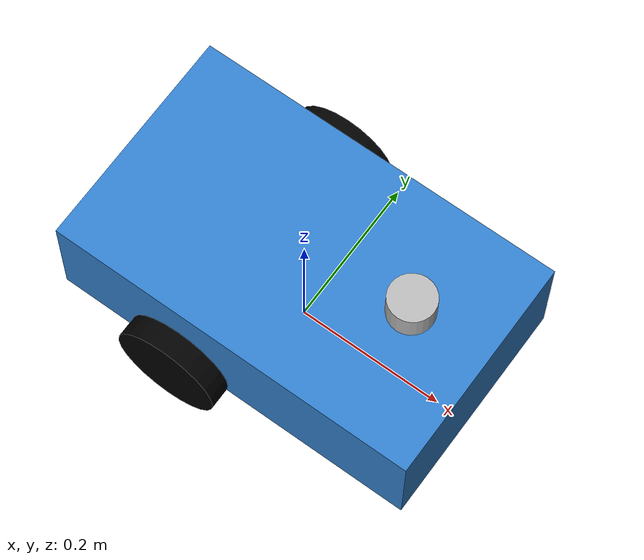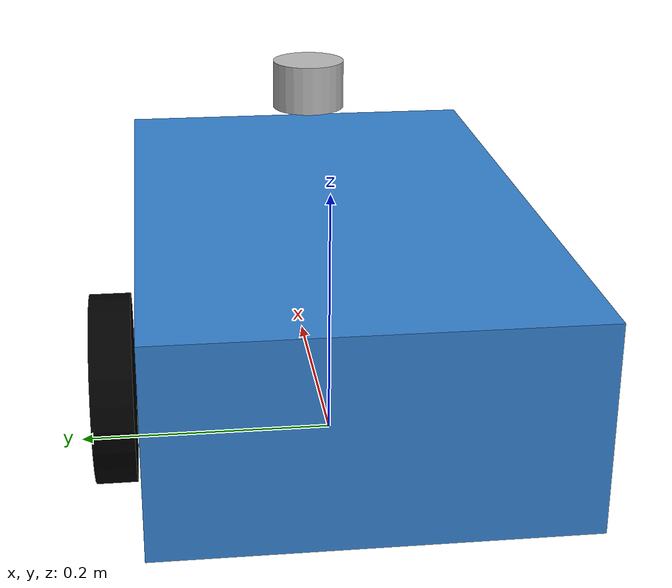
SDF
<?xml version="1.0"?>
<sdf version="1.6">
  <model name="two_wheel_robot">
    <static>false</static>

    <!-- Base Link -->
    <link name="base_link">
      <pose>0 0 0.12 0 0 0</pose>

      <inertial>
        <mass>5.0</mass>
        <inertia>
          <ixx>0.1</ixx><iyy>0.1</iyy><izz>0.1</izz>
          <ixy>0</ixy><ixz>0</ixz><iyz>0</iyz>
        </inertia>
      </inertial>

      <!-- Body -->
      <visual name="base_visual">
        <geometry>
          <box><size>0.5 0.3 0.15</size></box>
        </geometry>
        <material><ambient>0.2 0.5 0.8 1</ambient></material>
      </visual>

      <collision name="base_collision">
        <geometry>
          <box><size>0.5 0.3 0.15</size></box>
        </geometry>
      </collision>
    </link>

    <!-- Left Wheel -->
    <link name="left_wheel">
      <pose>-0.07 0.17 0.08 1.5708 0 0</pose>

      <inertial>
        <mass>0.5</mass>
        <inertia><ixx>0.01</ixx><iyy>0.01</iyy><izz>0.01</izz></inertia>
      </inertial>
      <visual name="left_wheel_visual">
        <geometry>
          <cylinder><radius>0.07</radius><length>0.03</length></cylinder>
        </geometry>
        <material><ambient>0 0 0 1</ambient></material>
      </visual>
      <collision name="left_wheel_collision">
        <geometry>
          <cylinder><radius>0.07</radius><length>0.03</length></cylinder>
        </geometry>
      </collision>
    </link>

    <!-- Right Wheel -->
    <link name="right_wheel">
      <pose>-0.07 -0.17 0.08 1.5708 0 0</pose>

      <inertial>
        <mass>0.5</mass>
        <inertia><ixx>0.01</ixx><iyy>0.01</iyy><izz>0.01</izz></inertia>
      </inertial>
      <visual name="right_wheel_visual">
        <geometry>
          <cylinder><radius>0.07</radius><length>0.03</length></cylinder>
        </geometry>
        <material><ambient>0 0 0 1</ambient></material>
      </visual>
      <collision name="right_wheel_collision">
        <geometry>
          <cylinder><radius>0.07</radius><length>0.03</length></cylinder>
        </geometry>
      </collision>
    </link>

    <!-- Joints -->
    <joint name="left_wheel_joint" type="revolute">
      <parent>base_link</parent>
      <child>left_wheel</child>
      <axis>
        <xyz>0 0 1</xyz>
<dynamics>
  <damping>0.2</damping>
  <friction>0.0</friction>
</dynamics>
        <limit><lower>-inf</lower><upper>inf</upper></limit>
      </axis>
    </joint>

    <joint name="right_wheel_joint" type="revolute">
      <parent>base_link</parent>
      <child>right_wheel</child>
      <axis>
        <xyz>0 0 1</xyz>
        <dynamics>
  <damping>0.2</damping>
  <friction>0.0</friction>
</dynamics>
        <limit><lower>-inf</lower><upper>inf</upper></limit>
      </axis>
    </joint>

  <!-- Joint for LiDAR -->
<joint name="lidar_joint" type="fixed">
  <parent>base_link</parent>
  <child>lidar_link</child>
</joint>

<!-- Joint for IMU -->
<joint name="imu_joint" type="fixed">
  <parent>base_link</parent>
  <child>imu_link</child>
</joint>

    <!-- LiDAR -->
    <link name="lidar_link">
      <pose>0.15 0 0.25 0 0 0</pose>

      <visual name="lidar_visual">
        <geometry>
          <cylinder><radius>0.03</radius><length>0.04</length></cylinder>
        </geometry>
      </visual>

      <sensor name="lidar" type="ray">
      <topic>scan</topic>

        <update_rate>10</update_rate>
        <ray>
          <scan>
            <horizontal>
              <samples>360</samples>
              <resolution>1</resolution>
              <min_angle>-3.14</min_angle>
              <max_angle>3.14</max_angle>
            </horizontal>
          </scan>
          <range>
            <min>0.1</min>
            <max>5.0</max>
            <resolution>0.01</resolution>
          </range>
        </ray>
        <always_on>true</always_on>
        <visualize>true</visualize>

      <plugin name="gazebo_ros_lidar" filename="libgazebo_ros_ray_sensor.so">
        <ros>
          <namespace>/</namespace>
          <remapping>scan:=/scan</remapping>
        </ros>
      </plugin>

      </sensor>
    </link>

    <!-- IMU -->
    <link name="imu_link">
      <pose>0 0 0.15 0 0 0</pose>
      <visual name="imu_visual">
  <geometry>
    <box><size>0.05 0.05 0.03</size></box>
  </geometry>
  <material><ambient>1 0 0 1</ambient></material>
</visual>

  <inertial>
    <mass>0.01</mass>   <!-- very light sensor -->
    <inertia>
      <ixx>1e-6</ixx><iyy>1e-6</iyy><izz>1e-6</izz>
      <ixy>0</ixy><ixz>0</ixz><iyz>0</iyz>
    </inertia>
  </inertial>

      <sensor name="imu" type="imu">
        <always_on>true</always_on>
        <update_rate>100</update_rate>
        <plugin name="imu_plugin" filename="libgazebo_ros_imu_sensor.so">
  <ros>
    <namespace>/</namespace>
    <remapping>imu:=/imu</remapping>
  </ros>
</plugin>
      </sensor>
    </link>

    <pose>0 0 0 0 0 0</pose>

        <!-- Castor Wheel -->
    <link name="caster_wheel">
      <pose>0.15 0 0.08 0 0 0</pose>  <!-- behind robot, touching ground -->

      <inertial>
        <mass>0.5</mass>
        <inertia>
          <ixx>0.0001</ixx><iyy>0.0001</iyy><izz>0.0001</izz>
          <ixy>0</ixy><ixz>0</ixz><iyz>0</iyz>
        </inertia>
      </inertial>

      <collision name="caster_collision">
        <geometry>
          <sphere>
            <radius>0.07</radius>
          </sphere>
        </geometry>
        <surface>
          <friction>
            <ode>
              <mu>0.05</mu>
              <mu2>0.05</mu2>
            </ode>
          </friction>
        </surface>
      </collision>

      <visual name="caster_visual">
        <geometry>
          <sphere>
            <radius>0.07</radius>
          </sphere>
        </geometry>
        <material>
          <ambient>0.3 0.3 0.3 1</ambient>
        </material>
      </visual>
    </link>

    <!-- Castor joint -->
    <joint name="caster_joint" type="fixed">
      <parent>base_link</parent>
      <child>caster_wheel</child>
    </joint>

<!-- Differential Drive Plugin -->
<plugin name="diff_drive" filename="libgazebo_ros_diff_drive.so">
  <ros>
    <namespace>/</namespace>
  </ros>

  <!-- Wheel joints -->
  <left_joint>left_wheel_joint</left_joint>
  <right_joint>right_wheel_joint</right_joint>

  <!-- Wheel geometry -->
  <wheel_separation>0.36</wheel_separation>     <!-- distance between wheels (y-axis) -->
  <wheel_radius>0.07</wheel_radius>

  <!-- ROS interface -->
  <command_topic>/cmd_vel</command_topic>
  <odometry_topic>/odom</odometry_topic>
  <odometry_frame>odom</odometry_frame>
  <robot_base_frame>base_link</robot_base_frame>

  <!-- Movement tuning -->
  <publish_odom>true</publish_odom>
  <publish_tf>true</publish_tf>

  <!-- Wheel constraints -->
  <max_wheel_torque>5.0</max_wheel_torque>
  <max_wheel_acceleration>10.0</max_wheel_acceleration>
</plugin>

  </model>
</sdf>
